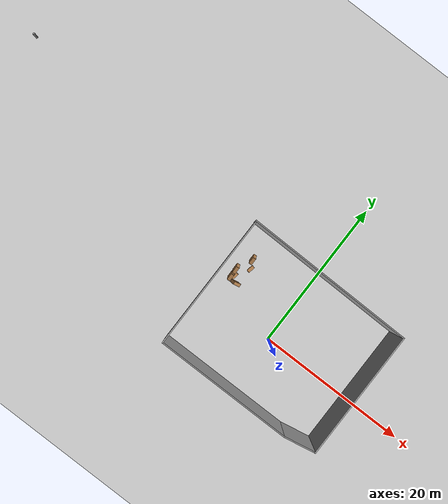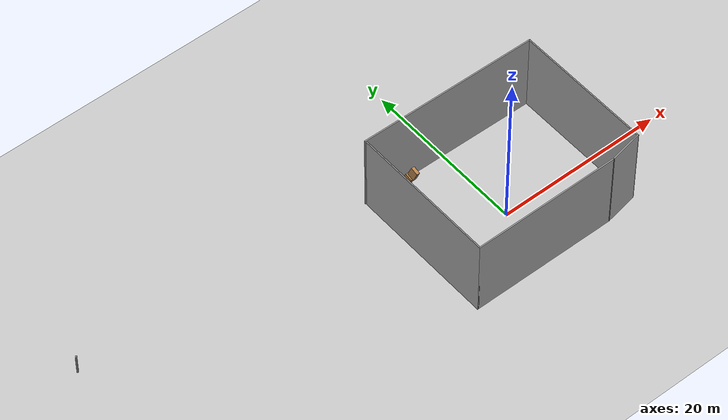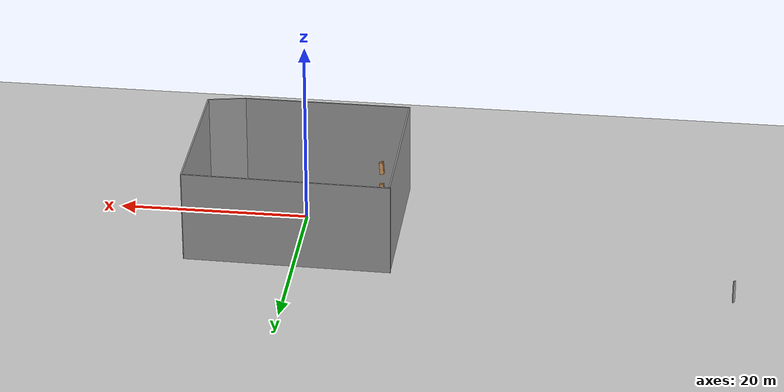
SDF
<sdf version="1.6">
 <world name="default">
  <model name="ground_plane">
   <static>1</static>
   <link name="link">
    <collision name="collision">
     <geometry><plane><normal>0 0 1</normal><size>100 100</size></plane></geometry>
     <surface><friction><ode><mu>100</mu><mu2>50</mu2></ode></friction></surface>
    </collision>
    <visual name="visual">
     <cast_shadows>0</cast_shadows>
     <geometry><plane><normal>0 0 1</normal><size>100 100</size></plane></geometry>
     <material>
      <script><uri>file://media/materials/scripts/gazebo.material</uri><name>Gazebo/Grey</name></script>
     </material>
    </visual>
   </link>
  </model>
  <model name="bookshelf_0_clone_1_clone_2_clone_2">
   <static>1</static>
   <link name="link">
    <inertial><mass>1</mass></inertial>
    <collision name="back">
     <pose>0 0.005 0.6 0 -0 0</pose>
     <geometry><box><size>0.9 0.01 1.2</size></box></geometry>
    </collision>
    <visual name="visual1">
     <pose>0 0.005 0.6 0 -0 0</pose>
     <geometry><box><size>0.9 0.01 1.2</size></box></geometry>
     <material>
      <script><uri>file://media/materials/scripts/gazebo.material</uri><name>Gazebo/Wood</name></script>
     </material>
    </visual>
    <collision name="left_side">
     <pose>0.45 -0.195 0.6 0 -0 0</pose>
     <geometry><box><size>0.02 0.4 1.2</size></box></geometry>
    </collision>
    <visual name="visual2">
     <pose>0.45 -0.195 0.6 0 -0 0</pose>
     <geometry><box><size>0.02 0.4 1.2</size></box></geometry>
     <material>
      <script><uri>file://media/materials/scripts/gazebo.material</uri><name>Gazebo/Wood</name></script>
     </material>
    </visual>
    <collision name="right_side">
     <pose>-0.45 -0.195 0.6 0 -0 0</pose>
     <geometry><box><size>0.02 0.4 1.2</size></box></geometry>
    </collision>
    <visual name="visual3">
     <pose>-0.45 -0.195 0.6 0 -0 0</pose>
     <geometry><box><size>0.02 0.4 1.2</size></box></geometry>
     <material>
      <script><uri>file://media/materials/scripts/gazebo.material</uri><name>Gazebo/Wood</name></script>
     </material>
    </visual>
    <collision name="bottom">
     <pose>0 -0.195 0.03 0 -0 0</pose>
     <geometry><box><size>0.88 0.4 0.06</size></box></geometry>
    </collision>
    <visual name="visual4">
     <pose>0 -0.195 0.03 0 -0 0</pose>
     <geometry><box><size>0.88 0.4 0.06</size></box></geometry>
     <material>
      <script><uri>file://media/materials/scripts/gazebo.material</uri><name>Gazebo/Wood</name></script>
     </material>
    </visual>
    <collision name="top">
     <pose>0 -0.195 1.19 0 -0 0</pose>
     <geometry><box><size>0.88 0.4 0.02</size></box></geometry>
    </collision>
    <visual name="visual5">
     <pose>0 -0.195 1.19 0 -0 0</pose>
     <geometry><box><size>0.88 0.4 0.02</size></box></geometry>
     <material>
      <script><uri>file://media/materials/scripts/gazebo.material</uri><name>Gazebo/Wood</name></script>
     </material>
    </visual>
    <collision name="low_shelf">
     <pose>0 -0.195 0.43 0 -0 0</pose>
     <geometry><box><size>0.88 0.4 0.02</size></box></geometry>
    </collision>
    <visual name="visual6">
     <pose>0 -0.195 0.43 0 -0 0</pose>
     <geometry><box><size>0.88 0.4 0.02</size></box></geometry>
     <material>
      <script><uri>file://media/materials/scripts/gazebo.material</uri><name>Gazebo/Wood</name></script>
     </material>
    </visual>
    <collision name="high_shelf">
     <pose>0 -0.195 0.8 0 -0 0</pose>
     <geometry><box><size>0.88 0.4 0.02</size></box></geometry>
    </collision>
    <visual name="visual7">
     <pose>0 -0.195 0.8 0 -0 0</pose>
     <geometry><box><size>0.88 0.4 0.02</size></box></geometry>
     <material>
      <script><uri>file://media/materials/scripts/gazebo.material</uri><name>Gazebo/Wood</name></script>
     </material>
    </visual>
   </link>
   <pose>-8.78773 3.70034 5.3602 0.126952 -0.31446 1.5878</pose>
  </model>
  <model name="bookshelf_1_clone">
   <static>1</static>
   <link name="link">
    <inertial><mass>1</mass></inertial>
    <collision name="back">
     <pose>0 0.005 0.6 0 -0 0</pose>
     <geometry><box><size>0.9 0.01 1.2</size></box></geometry>
    </collision>
    <visual name="visual1">
     <pose>0 0.005 0.6 0 -0 0</pose>
     <geometry><box><size>0.9 0.01 1.2</size></box></geometry>
     <material>
      <script><uri>file://media/materials/scripts/gazebo.material</uri><name>Gazebo/Wood</name></script>
     </material>
    </visual>
    <collision name="left_side">
     <pose>0.45 -0.195 0.6 0 -0 0</pose>
     <geometry><box><size>0.02 0.4 1.2</size></box></geometry>
    </collision>
    <visual name="visual2">
     <pose>0.45 -0.195 0.6 0 -0 0</pose>
     <geometry><box><size>0.02 0.4 1.2</size></box></geometry>
     <material>
      <script><uri>file://media/materials/scripts/gazebo.material</uri><name>Gazebo/Wood</name></script>
     </material>
    </visual>
    <collision name="right_side">
     <pose>-0.45 -0.195 0.6 0 -0 0</pose>
     <geometry><box><size>0.02 0.4 1.2</size></box></geometry>
    </collision>
    <visual name="visual3">
     <pose>-0.45 -0.195 0.6 0 -0 0</pose>
     <geometry><box><size>0.02 0.4 1.2</size></box></geometry>
     <material>
      <script><uri>file://media/materials/scripts/gazebo.material</uri><name>Gazebo/Wood</name></script>
     </material>
    </visual>
    <collision name="bottom">
     <pose>0 -0.195 0.03 0 -0 0</pose>
     <geometry><box><size>0.88 0.4 0.06</size></box></geometry>
    </collision>
    <visual name="visual4">
     <pose>0 -0.195 0.03 0 -0 0</pose>
     <geometry><box><size>0.88 0.4 0.06</size></box></geometry>
     <material>
      <script><uri>file://media/materials/scripts/gazebo.material</uri><name>Gazebo/Wood</name></script>
     </material>
    </visual>
    <collision name="top">
     <pose>0 -0.195 1.19 0 -0 0</pose>
     <geometry><box><size>0.88 0.4 0.02</size></box></geometry>
    </collision>
    <visual name="visual5">
     <pose>0 -0.195 1.19 0 -0 0</pose>
     <geometry><box><size>0.88 0.4 0.02</size></box></geometry>
     <material>
      <script><uri>file://media/materials/scripts/gazebo.material</uri><name>Gazebo/Wood</name></script>
     </material>
    </visual>
    <collision name="low_shelf">
     <pose>0 -0.195 0.43 0 -0 0</pose>
     <geometry><box><size>0.88 0.4 0.02</size></box></geometry>
    </collision>
    <visual name="visual6">
     <pose>0 -0.195 0.43 0 -0 0</pose>
     <geometry><box><size>0.88 0.4 0.02</size></box></geometry>
     <material>
      <script><uri>file://media/materials/scripts/gazebo.material</uri><name>Gazebo/Wood</name></script>
     </material>
    </visual>
    <collision name="high_shelf">
     <pose>0 -0.195 0.8 0 -0 0</pose>
     <geometry><box><size>0.88 0.4 0.02</size></box></geometry>
    </collision>
    <visual name="visual7">
     <pose>0 -0.195 0.8 0 -0 0</pose>
     <geometry><box><size>0.88 0.4 0.02</size></box></geometry>
     <material>
      <script><uri>file://media/materials/scripts/gazebo.material</uri><name>Gazebo/Wood</name></script>
     </material>
    </visual>
   </link>
   <pose>-8.27074 3.74759 1.34946 0 -0 1.38737</pose>
  </model>
  <model name="bookshelf_1_clone_0">
   <static>1</static>
   <link name="link">
    <inertial><mass>1</mass></inertial>
    <collision name="back">
     <pose>0 0.005 0.6 0 -0 0</pose>
     <geometry><box><size>0.9 0.01 1.2</size></box></geometry>
    </collision>
    <visual name="visual1">
     <pose>0 0.005 0.6 0 -0 0</pose>
     <geometry><box><size>0.9 0.01 1.2</size></box></geometry>
     <material>
      <script><uri>file://media/materials/scripts/gazebo.material</uri><name>Gazebo/Wood</name></script>
     </material>
    </visual>
    <collision name="left_side">
     <pose>0.45 -0.195 0.6 0 -0 0</pose>
     <geometry><box><size>0.02 0.4 1.2</size></box></geometry>
    </collision>
    <visual name="visual2">
     <pose>0.45 -0.195 0.6 0 -0 0</pose>
     <geometry><box><size>0.02 0.4 1.2</size></box></geometry>
     <material>
      <script><uri>file://media/materials/scripts/gazebo.material</uri><name>Gazebo/Wood</name></script>
     </material>
    </visual>
    <collision name="right_side">
     <pose>-0.45 -0.195 0.6 0 -0 0</pose>
     <geometry><box><size>0.02 0.4 1.2</size></box></geometry>
    </collision>
    <visual name="visual3">
     <pose>-0.45 -0.195 0.6 0 -0 0</pose>
     <geometry><box><size>0.02 0.4 1.2</size></box></geometry>
     <material>
      <script><uri>file://media/materials/scripts/gazebo.material</uri><name>Gazebo/Wood</name></script>
     </material>
    </visual>
    <collision name="bottom">
     <pose>0 -0.195 0.03 0 -0 0</pose>
     <geometry><box><size>0.88 0.4 0.06</size></box></geometry>
    </collision>
    <visual name="visual4">
     <pose>0 -0.195 0.03 0 -0 0</pose>
     <geometry><box><size>0.88 0.4 0.06</size></box></geometry>
     <material>
      <script><uri>file://media/materials/scripts/gazebo.material</uri><name>Gazebo/Wood</name></script>
     </material>
    </visual>
    <collision name="top">
     <pose>0 -0.195 1.19 0 -0 0</pose>
     <geometry><box><size>0.88 0.4 0.02</size></box></geometry>
    </collision>
    <visual name="visual5">
     <pose>0 -0.195 1.19 0 -0 0</pose>
     <geometry><box><size>0.88 0.4 0.02</size></box></geometry>
     <material>
      <script><uri>file://media/materials/scripts/gazebo.material</uri><name>Gazebo/Wood</name></script>
     </material>
    </visual>
    <collision name="low_shelf">
     <pose>0 -0.195 0.43 0 -0 0</pose>
     <geometry><box><size>0.88 0.4 0.02</size></box></geometry>
    </collision>
    <visual name="visual6">
     <pose>0 -0.195 0.43 0 -0 0</pose>
     <geometry><box><size>0.88 0.4 0.02</size></box></geometry>
     <material>
      <script><uri>file://media/materials/scripts/gazebo.material</uri><name>Gazebo/Wood</name></script>
     </material>
    </visual>
    <collision name="high_shelf">
     <pose>0 -0.195 0.8 0 -0 0</pose>
     <geometry><box><size>0.88 0.4 0.02</size></box></geometry>
    </collision>
    <visual name="visual7">
     <pose>0 -0.195 0.8 0 -0 0</pose>
     <geometry><box><size>0.88 0.4 0.02</size></box></geometry>
     <material>
      <script><uri>file://media/materials/scripts/gazebo.material</uri><name>Gazebo/Wood</name></script>
     </material>
    </visual>
   </link>
   <pose>-7.18787 5.59265 0.408899 0 -0 1.38737</pose>
  </model>
  <model name="bookshelf_2_clone_0">
   <static>1</static>
   <link name="link">
    <inertial><mass>1</mass></inertial>
    <collision name="back">
     <pose>0 0.005 0.6 0 -0 0</pose>
     <geometry><box><size>0.9 0.01 1.2</size></box></geometry>
    </collision>
    <visual name="visual1">
     <pose>0 0.005 0.6 0 -0 0</pose>
     <geometry><box><size>0.9 0.01 1.2</size></box></geometry>
     <material>
      <script><uri>file://media/materials/scripts/gazebo.material</uri><name>Gazebo/Wood</name></script>
     </material>
    </visual>
    <collision name="left_side">
     <pose>0.45 -0.195 0.6 0 -0 0</pose>
     <geometry><box><size>0.02 0.4 1.2</size></box></geometry>
    </collision>
    <visual name="visual2">
     <pose>0.45 -0.195 0.6 0 -0 0</pose>
     <geometry><box><size>0.02 0.4 1.2</size></box></geometry>
     <material>
      <script><uri>file://media/materials/scripts/gazebo.material</uri><name>Gazebo/Wood</name></script>
     </material>
    </visual>
    <collision name="right_side">
     <pose>-0.45 -0.195 0.6 0 -0 0</pose>
     <geometry><box><size>0.02 0.4 1.2</size></box></geometry>
    </collision>
    <visual name="visual3">
     <pose>-0.45 -0.195 0.6 0 -0 0</pose>
     <geometry><box><size>0.02 0.4 1.2</size></box></geometry>
     <material>
      <script><uri>file://media/materials/scripts/gazebo.material</uri><name>Gazebo/Wood</name></script>
     </material>
    </visual>
    <collision name="bottom">
     <pose>0 -0.195 0.03 0 -0 0</pose>
     <geometry><box><size>0.88 0.4 0.06</size></box></geometry>
    </collision>
    <visual name="visual4">
     <pose>0 -0.195 0.03 0 -0 0</pose>
     <geometry><box><size>0.88 0.4 0.06</size></box></geometry>
     <material>
      <script><uri>file://media/materials/scripts/gazebo.material</uri><name>Gazebo/Wood</name></script>
     </material>
    </visual>
    <collision name="top">
     <pose>0 -0.195 1.19 0 -0 0</pose>
     <geometry><box><size>0.88 0.4 0.02</size></box></geometry>
    </collision>
    <visual name="visual5">
     <pose>0 -0.195 1.19 0 -0 0</pose>
     <geometry><box><size>0.88 0.4 0.02</size></box></geometry>
     <material>
      <script><uri>file://media/materials/scripts/gazebo.material</uri><name>Gazebo/Wood</name></script>
     </material>
    </visual>
    <collision name="low_shelf">
     <pose>0 -0.195 0.43 0 -0 0</pose>
     <geometry><box><size>0.88 0.4 0.02</size></box></geometry>
    </collision>
    <visual name="visual6">
     <pose>0 -0.195 0.43 0 -0 0</pose>
     <geometry><box><size>0.88 0.4 0.02</size></box></geometry>
     <material>
      <script><uri>file://media/materials/scripts/gazebo.material</uri><name>Gazebo/Wood</name></script>
     </material>
    </visual>
    <collision name="high_shelf">
     <pose>0 -0.195 0.8 0 -0 0</pose>
     <geometry><box><size>0.88 0.4 0.02</size></box></geometry>
    </collision>
    <visual name="visual7">
     <pose>0 -0.195 0.8 0 -0 0</pose>
     <geometry><box><size>0.88 0.4 0.02</size></box></geometry>
     <material>
      <script><uri>file://media/materials/scripts/gazebo.material</uri><name>Gazebo/Wood</name></script>
     </material>
    </visual>
   </link>
   <pose>-7.61748 2.85483 0 -0.077915 -0.400957 -2.94416</pose>
  </model>
  <model name="wood_0">
   <pose>-17.059 2.43021 0 0 -0 0</pose>
   <link name="Wall_10">
    <collision name="Wall_10_Collision">
     <geometry><box><size>0.25 0.15 2.5</size></box></geometry>
     <pose>0 0 1.25 0 -0 0</pose>
    </collision>
    <visual name="Wall_10_Visual">
     <pose>0 0 1.25 0 -0 0</pose>
     <geometry><box><size>0.25 0.15 2.5</size></box></geometry>
     <material>
      <script><uri>file://media/materials/scripts/gazebo.material</uri><name>Gazebo/Grey</name></script>
      <ambient>1 1 1 1</ambient>
     </material>
     <meta><layer>0</layer></meta>
    </visual>
    <pose>-28.4677 9.62029 0 0 -0 -2.35619</pose>
   </link>
   <link name="Wall_16">
    <collision name="Wall_16_Collision">
     <geometry><box><size>17.5 0.15 10</size></box></geometry>
     <pose>0 0 5 0 -0 0</pose>
    </collision>
    <visual name="Wall_16_Visual">
     <pose>0 0 5 0 -0 0</pose>
     <geometry><box><size>17.5 0.15 10</size></box></geometry>
     <material>
      <script><uri>file://media/materials/scripts/gazebo.material</uri><name>Gazebo/Grey</name></script>
      <ambient>1 1 1 1</ambient>
     </material>
     <meta><layer>0</layer></meta>
    </visual>
    <pose>6.96158 -0.999208 0 0 -0 -1.5708</pose>
   </link>
   <link name="Wall_17">
    <collision name="Wall_17_Collision">
     <geometry><box><size>17.75 0.15 10</size></box></geometry>
     <pose>0 0 5 0 -0 0</pose>
    </collision>
    <visual name="Wall_17_Visual">
     <pose>0 0 5 0 -0 0</pose>
     <geometry><box><size>17.75 0.15 10</size></box></geometry>
     <material>
      <script><uri>file://media/materials/scripts/gazebo.material</uri><name>Gazebo/Grey</name></script>
      <ambient>1 1 1 1</ambient>
     </material>
     <meta><layer>0</layer></meta>
    </visual>
    <pose>15.7616 -9.67421 0 0 -0 0</pose>
   </link>
   <link name="Wall_18">
    <collision name="Wall_18_Collision">
     <geometry><box><size>4.17855 0.15 10</size></box></geometry>
     <pose>0 0 5 0 -0 0</pose>
    </collision>
    <visual name="Wall_18_Visual">
     <pose>0 0 5 0 -0 0</pose>
     <geometry><box><size>4.17855 0.15 10</size></box></geometry>
     <material>
      <script><uri>file://media/materials/scripts/gazebo.material</uri><name>Gazebo/Grey</name></script>
      <ambient>1 1 1 1</ambient>
     </material>
     <meta><layer>0</layer></meta>
    </visual>
    <pose>26.5416 -9.30421 0 0 -0 0.184738</pose>
   </link>
   <link name="Wall_19">
    <collision name="Wall_19_Collision">
     <geometry><box><size>16.696 0.15 10</size></box></geometry>
     <pose>0 0 5 0 -0 0</pose>
    </collision>
    <visual name="Wall_19_Visual">
     <pose>0 0 5 0 -0 0</pose>
     <geometry><box><size>16.696 0.15 10</size></box></geometry>
     <material>
      <script><uri>file://media/materials/scripts/gazebo.material</uri><name>Gazebo/Grey</name></script>
      <ambient>1 1 1 1</ambient>
     </material>
     <meta><layer>0</layer></meta>
    </visual>
    <pose>28.5216 -0.661208 0 0 -0 1.5708</pose>
   </link>
   <link name="Wall_20">
    <collision name="Wall_20_Collision">
     <geometry><box><size>21.7524 0.15 10</size></box></geometry>
     <pose>0 0 5 0 -0 0</pose>
    </collision>
    <visual name="Wall_20_Visual">
     <pose>0 0 5 0 -0 0</pose>
     <geometry><box><size>21.7524 0.15 10</size></box></geometry>
     <material>
      <script><uri>file://media/materials/scripts/gazebo.material</uri><name>Gazebo/Grey</name></script>
      <ambient>1 1 1 1</ambient>
     </material>
     <meta><layer>0</layer></meta>
    </visual>
    <pose>17.7216 7.77229 0 0 -0 3.12673</pose>
   </link>
   <static>1</static>
  </model>
  <model name="bookshelf_0_clone_1_clone_2_clone_2_clone_2">
   <static>1</static>
   <link name="link">
    <inertial><mass>1</mass></inertial>
    <collision name="back">
     <pose>0 0.005 0.6 0 -0 0</pose>
     <geometry><box><size>0.9 0.01 1.2</size></box></geometry>
    </collision>
    <visual name="visual1">
     <pose>0 0.005 0.6 0 -0 0</pose>
     <geometry><box><size>0.9 0.01 1.2</size></box></geometry>
     <material>
      <script><uri>file://media/materials/scripts/gazebo.material</uri><name>Gazebo/Wood</name></script>
     </material>
    </visual>
    <collision name="left_side">
     <pose>0.45 -0.195 0.6 0 -0 0</pose>
     <geometry><box><size>0.02 0.4 1.2</size></box></geometry>
    </collision>
    <visual name="visual2">
     <pose>0.45 -0.195 0.6 0 -0 0</pose>
     <geometry><box><size>0.02 0.4 1.2</size></box></geometry>
     <material>
      <script><uri>file://media/materials/scripts/gazebo.material</uri><name>Gazebo/Wood</name></script>
     </material>
    </visual>
    <collision name="right_side">
     <pose>-0.45 -0.195 0.6 0 -0 0</pose>
     <geometry><box><size>0.02 0.4 1.2</size></box></geometry>
    </collision>
    <visual name="visual3">
     <pose>-0.45 -0.195 0.6 0 -0 0</pose>
     <geometry><box><size>0.02 0.4 1.2</size></box></geometry>
     <material>
      <script><uri>file://media/materials/scripts/gazebo.material</uri><name>Gazebo/Wood</name></script>
     </material>
    </visual>
    <collision name="bottom">
     <pose>0 -0.195 0.03 0 -0 0</pose>
     <geometry><box><size>0.88 0.4 0.06</size></box></geometry>
    </collision>
    <visual name="visual4">
     <pose>0 -0.195 0.03 0 -0 0</pose>
     <geometry><box><size>0.88 0.4 0.06</size></box></geometry>
     <material>
      <script><uri>file://media/materials/scripts/gazebo.material</uri><name>Gazebo/Wood</name></script>
     </material>
    </visual>
    <collision name="top">
     <pose>0 -0.195 1.19 0 -0 0</pose>
     <geometry><box><size>0.88 0.4 0.02</size></box></geometry>
    </collision>
    <visual name="visual5">
     <pose>0 -0.195 1.19 0 -0 0</pose>
     <geometry><box><size>0.88 0.4 0.02</size></box></geometry>
     <material>
      <script><uri>file://media/materials/scripts/gazebo.material</uri><name>Gazebo/Wood</name></script>
     </material>
    </visual>
    <collision name="low_shelf">
     <pose>0 -0.195 0.43 0 -0 0</pose>
     <geometry><box><size>0.88 0.4 0.02</size></box></geometry>
    </collision>
    <visual name="visual6">
     <pose>0 -0.195 0.43 0 -0 0</pose>
     <geometry><box><size>0.88 0.4 0.02</size></box></geometry>
     <material>
      <script><uri>file://media/materials/scripts/gazebo.material</uri><name>Gazebo/Wood</name></script>
     </material>
    </visual>
    <collision name="high_shelf">
     <pose>0 -0.195 0.8 0 -0 0</pose>
     <geometry><box><size>0.88 0.4 0.02</size></box></geometry>
    </collision>
    <visual name="visual7">
     <pose>0 -0.195 0.8 0 -0 0</pose>
     <geometry><box><size>0.88 0.4 0.02</size></box></geometry>
     <material>
      <script><uri>file://media/materials/scripts/gazebo.material</uri><name>Gazebo/Wood</name></script>
     </material>
    </visual>
   </link>
   <pose>-7.91169 6.78734 4.94441 0.126952 -0.31446 1.5878</pose>
  </model>
  <model name="bookshelf_0_clone_1_clone_2_clone_2_clone_clone_2">
   <static>1</static>
   <link name="link">
    <inertial><mass>1</mass></inertial>
    <collision name="back">
     <pose>0 0.005 0.6 0 -0 0</pose>
     <geometry><box><size>0.9 0.01 1.2</size></box></geometry>
    </collision>
    <visual name="visual1">
     <pose>0 0.005 0.6 0 -0 0</pose>
     <geometry><box><size>0.9 0.01 1.2</size></box></geometry>
     <material>
      <script><uri>file://media/materials/scripts/gazebo.material</uri><name>Gazebo/Wood</name></script>
     </material>
    </visual>
    <collision name="left_side">
     <pose>0.45 -0.195 0.6 0 -0 0</pose>
     <geometry><box><size>0.02 0.4 1.2</size></box></geometry>
    </collision>
    <visual name="visual2">
     <pose>0.45 -0.195 0.6 0 -0 0</pose>
     <geometry><box><size>0.02 0.4 1.2</size></box></geometry>
     <material>
      <script><uri>file://media/materials/scripts/gazebo.material</uri><name>Gazebo/Wood</name></script>
     </material>
    </visual>
    <collision name="right_side">
     <pose>-0.45 -0.195 0.6 0 -0 0</pose>
     <geometry><box><size>0.02 0.4 1.2</size></box></geometry>
    </collision>
    <visual name="visual3">
     <pose>-0.45 -0.195 0.6 0 -0 0</pose>
     <geometry><box><size>0.02 0.4 1.2</size></box></geometry>
     <material>
      <script><uri>file://media/materials/scripts/gazebo.material</uri><name>Gazebo/Wood</name></script>
     </material>
    </visual>
    <collision name="bottom">
     <pose>0 -0.195 0.03 0 -0 0</pose>
     <geometry><box><size>0.88 0.4 0.06</size></box></geometry>
    </collision>
    <visual name="visual4">
     <pose>0 -0.195 0.03 0 -0 0</pose>
     <geometry><box><size>0.88 0.4 0.06</size></box></geometry>
     <material>
      <script><uri>file://media/materials/scripts/gazebo.material</uri><name>Gazebo/Wood</name></script>
     </material>
    </visual>
    <collision name="top">
     <pose>0 -0.195 1.19 0 -0 0</pose>
     <geometry><box><size>0.88 0.4 0.02</size></box></geometry>
    </collision>
    <visual name="visual5">
     <pose>0 -0.195 1.19 0 -0 0</pose>
     <geometry><box><size>0.88 0.4 0.02</size></box></geometry>
     <material>
      <script><uri>file://media/materials/scripts/gazebo.material</uri><name>Gazebo/Wood</name></script>
     </material>
    </visual>
    <collision name="low_shelf">
     <pose>0 -0.195 0.43 0 -0 0</pose>
     <geometry><box><size>0.88 0.4 0.02</size></box></geometry>
    </collision>
    <visual name="visual6">
     <pose>0 -0.195 0.43 0 -0 0</pose>
     <geometry><box><size>0.88 0.4 0.02</size></box></geometry>
     <material>
      <script><uri>file://media/materials/scripts/gazebo.material</uri><name>Gazebo/Wood</name></script>
     </material>
    </visual>
    <collision name="high_shelf">
     <pose>0 -0.195 0.8 0 -0 0</pose>
     <geometry><box><size>0.88 0.4 0.02</size></box></geometry>
    </collision>
    <visual name="visual7">
     <pose>0 -0.195 0.8 0 -0 0</pose>
     <geometry><box><size>0.88 0.4 0.02</size></box></geometry>
     <material>
      <script><uri>file://media/materials/scripts/gazebo.material</uri><name>Gazebo/Wood</name></script>
     </material>
    </visual>
   </link>
   <pose>-8.87994 4.7706 8.52987 0.126952 -0.31446 1.5878</pose>
  </model>
 </world>
</sdf>
